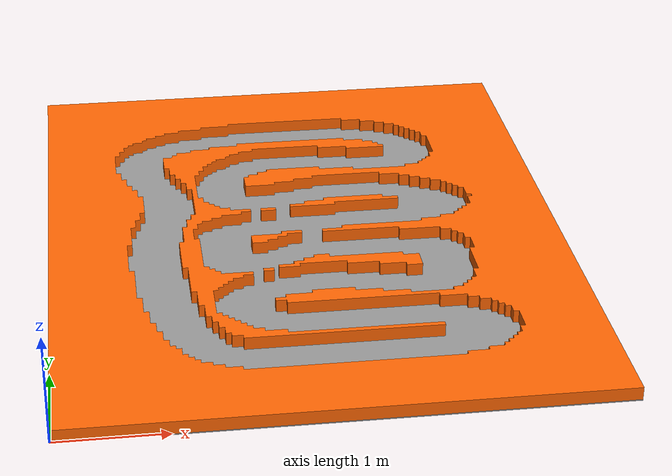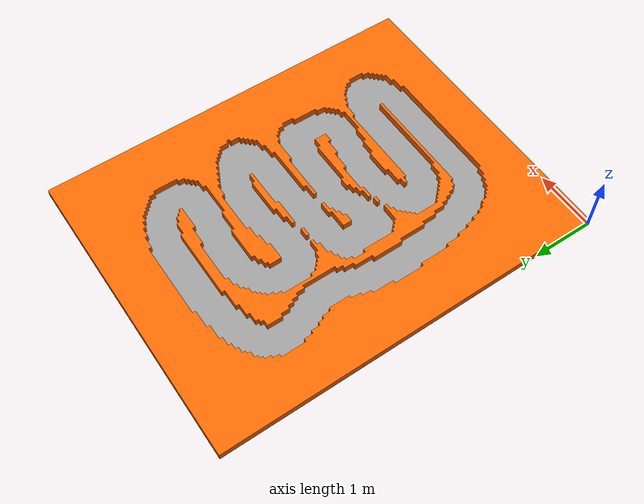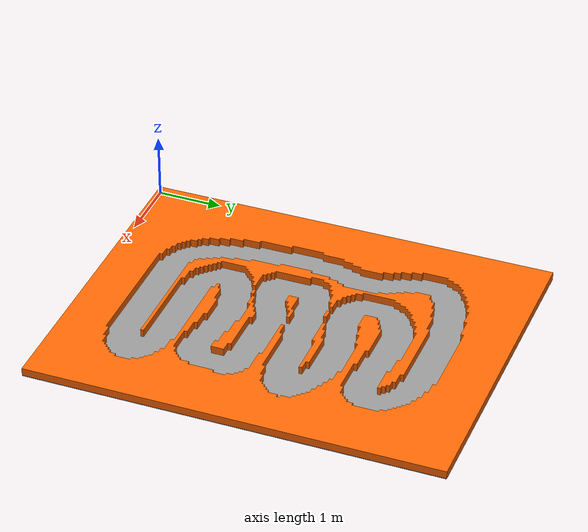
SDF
<sdf version="1.6">
  <world name="empty">
    <physics name="1ms" type="ignored">
      <max_step_size>0.001</max_step_size>
      <real_time_factor>10.0</real_time_factor>
    </physics>
    <plugin filename="gz-sim-physics-system"
            name="gz::sim::systems::Physics"/>
    <plugin filename="gz-sim-sensors-system" name="gz::sim::systems::Sensors">
      <render_engine>ogre2</render_engine>
    </plugin>
    <plugin filename="gz-sim-user-commands-system"
            name="gz::sim::systems::UserCommands"/>
    <plugin filename="gz-sim-scene-broadcaster-system"
            name="gz::sim::systems::SceneBroadcaster"/>
    <scene>
      <ambient>1.0 1.0 1.0</ambient>
      <background>0.8 0.8 0.8</background>
      <sky/>
    </scene>
    <model name="base_plate">
      <pose>2.475 3.175 -0.005 0 0 0</pose>
      <static>true</static>
      <link name="link">
        <collision name="collision">
          <geometry>
            <box><size>4.950 6.350 0.01</size></box>
          </geometry>
        </collision>
        <visual name="visual">
          <geometry>
            <box><size>4.950 6.350 0.01</size></box>
          </geometry>
          <material>
            <ambient>0.6 0.6 0.6 1</ambient>
            <diffuse>0.6 0.6 0.6 1</diffuse>
          </material>
        </visual>
      </link>
    </model>
    <light type="directional" name="sun">
      <pose>0 0 10 0 0 0</pose>
      <diffuse>1 1 1 1</diffuse>
      <specular>0.5 0.5 0.5 1</specular>
      <direction>-0.5 0.1 -0.9</direction>
    </light>
    <model name="turtlebot_track_05">
      <static>true</static>
      <link name="track">
        <visual name="track_visual">
          <geometry><mesh><uri>../meshes/turtlebot_track_05.stl</uri></mesh></geometry>
          <material>
            <ambient>1 0.4 0 1</ambient>
            <diffuse>1 0.4 0.01 1</diffuse>
          </material>
        </visual>
        <collision name="track_collision">
          <geometry><mesh><uri>../meshes/turtlebot_track_05.stl</uri></mesh></geometry>
        </collision>
      </link>
    </model>
  </world>
</sdf>
